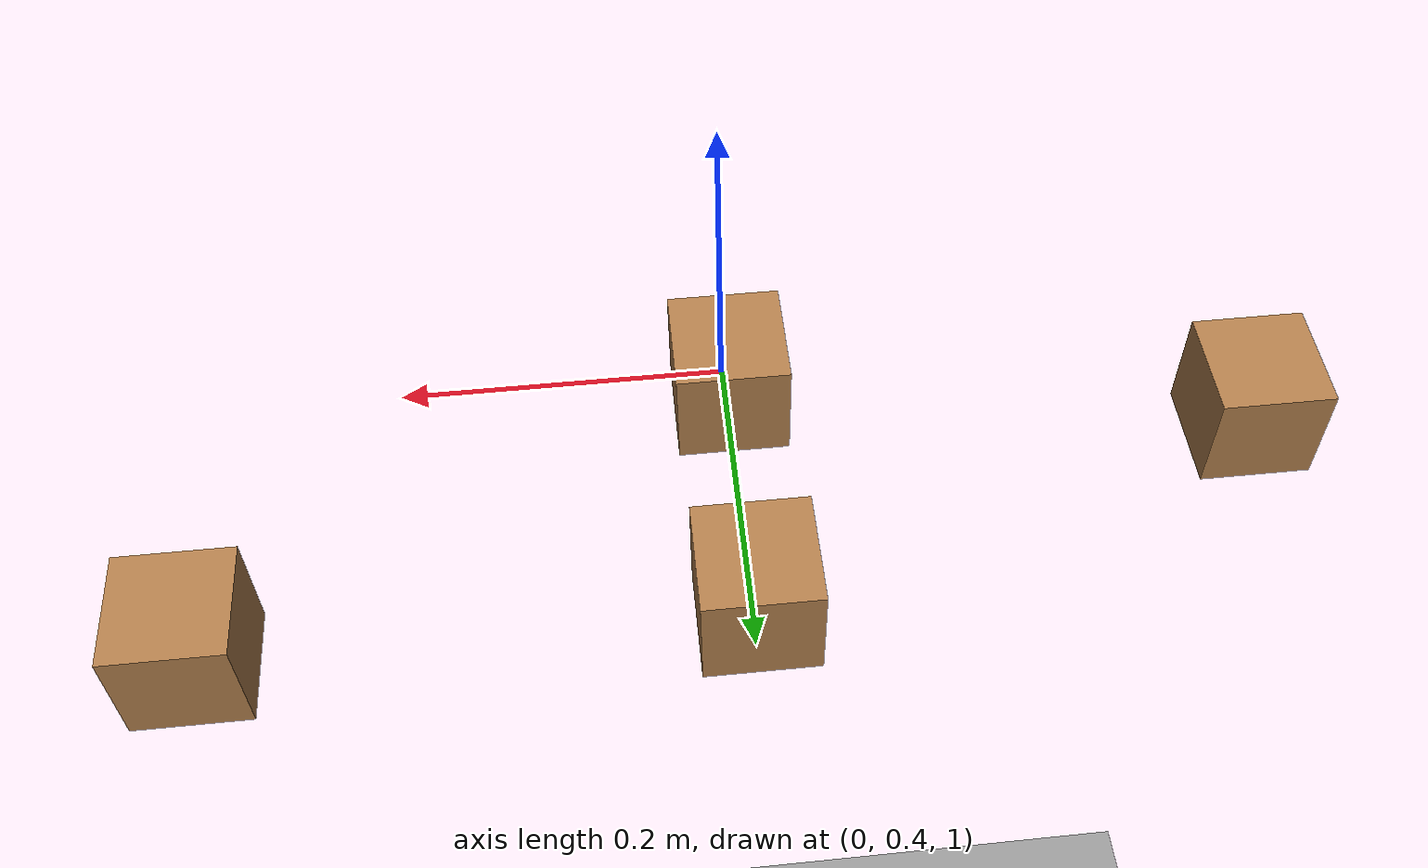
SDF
<sdf version="1.5">
 <world name="default">
  <scene><ambient>180 180 180 255</ambient><background>180 180 180 255</background><shadows>0</shadows></scene>
  <physics type="ode">
   <max_step_size>0.001</max_step_size>
   <real_time_factor>1.0</real_time_factor>
   <real_time_update_rate>1000</real_time_update_rate>
   <gravity>0 0 -9.8</gravity>
  </physics>
  <model name="ground_plane">
   <static>true</static>
   <link name="link">
    <collision name="collision">
     <geometry><plane><normal>0 0 1</normal><size>150 150</size></plane></geometry>
    </collision>
    <visual name="visual">
     <geometry><plane><normal>0 0 1</normal><size>5000 5000</size></plane></geometry>
     <material>
      <ambient>0.5 0.5 0.5 1</ambient>
      <diffuse>0.6 0.6 0.6 1</diffuse>
      <specular>0.3 0.3 0.3 1</specular>
      <emissive>0 0 0 1</emissive>
     </material>
    </visual>
   </link>
  </model>
  <model name="sun1">
   <static>true</static>
   <pose>0 0 10 0 -150 0</pose>
   <link name="link">
    <light name="sun_light" type="directional">
     <cast_shadows>false</cast_shadows>
     <pose>0 0 10 0 0 0</pose>
     <diffuse>204 204 204 255</diffuse>
     <specular>51 51 51 255</specular>
     <direction>0.5 0.1 -0.9</direction>
     <attenuation>
      <range>1000</range>
      <constant>0.9</constant>
      <linear>0.01</linear>
      <quadratic>0.000</quadratic>
     </attenuation>
    </light>
   </link>
  </model>
  <model name="sun2">
   <static>true</static>
   <pose>0 0 10 0 150 0</pose>
   <link name="link">
    <light name="sun_light" type="directional">
     <cast_shadows>false</cast_shadows>
     <pose>0 0 10 0 0 0</pose>
     <diffuse>204 204 204 255</diffuse>
     <specular>51 51 51 255</specular>
     <direction>0.5 0.1 -0.9</direction>
     <attenuation>
      <range>1000</range>
      <constant>0.9</constant>
      <linear>0.01</linear>
      <quadratic>0.000</quadratic>
     </attenuation>
    </light>
   </link>
  </model>
  <model name="wood_cube1">
   <link name="link">
    <pose>0 0 0.0375 0 -0 0</pose>
    <inertial>
     <mass>0.200</mass>
     <inertia>
      <ixx>0.00014083</ixx>
      <ixy>0</ixy>
      <ixz>0</ixz>
      <iyy>0.00014083</iyy>
      <iyz>0</iyz>
      <izz>0.00014083</izz>
     </inertia>
    </inertial>
    <collision name="collision">
     <geometry><box><size>0.065 0.065 0.065</size></box></geometry>
     <surface>
      <contact>
       <poissons_ratio>0.347</poissons_ratio>
       <elastic_modulus>8.8e+09</elastic_modulus>
       <ode><kp>100000</kp><kd>100</kd><max_vel>100</max_vel><min_depth>0.001</min_depth></ode>
      </contact>
      <friction>
       <torsional>
        <coefficient>1</coefficient>
        <use_patch_radius>0</use_patch_radius>
        <surface_radius>0.01</surface_radius>
       </torsional>
      </friction>
     </surface>
    </collision>
    <visual name="visual">
     <geometry><box><size>0.065 0.065 0.065</size></box></geometry>
     <material>
      <script><uri>file://media/materials/scripts/gazebo.material</uri><name>Gazebo/Wood</name></script>
     </material>
    </visual>
   </link>
   <pose>0.3 0.6 1.02 0 -0 0</pose>
  </model>
  <model name="wood_cube2">
   <link name="link">
    <pose>0 0 0.0375 0 -0 0</pose>
    <inertial>
     <mass>0.20</mass>
     <inertia>
      <ixx>0.00014083</ixx>
      <ixy>0</ixy>
      <ixz>0</ixz>
      <iyy>0.00014083</iyy>
      <iyz>0</iyz>
      <izz>0.00014083</izz>
     </inertia>
    </inertial>
    <collision name="collision">
     <geometry><box><size>0.065 0.065 0.065</size></box></geometry>
     <surface>
      <contact>
       <poissons_ratio>0.347</poissons_ratio>
       <elastic_modulus>8.8e+09</elastic_modulus>
       <ode><kp>100000</kp><kd>100</kd><max_vel>100</max_vel><min_depth>0.001</min_depth></ode>
      </contact>
      <friction>
       <torsional>
        <coefficient>1</coefficient>
        <use_patch_radius>0</use_patch_radius>
        <surface_radius>0.01</surface_radius>
       </torsional>
      </friction>
     </surface>
    </collision>
    <visual name="visual">
     <geometry><box><size>0.065 0.065 0.065</size></box></geometry>
     <material>
      <script><uri>file://media/materials/scripts/gazebo.material</uri><name>Gazebo/Wood</name></script>
     </material>
    </visual>
   </link>
   <pose>-0.3 0.5 1.02 0 -0 0</pose>
  </model>
  <model name="wood_cube3">
   <link name="link">
    <pose>0 0 0.0375 0 -0 0</pose>
    <inertial>
     <mass>0.200</mass>
     <inertia>
      <ixx>0.00014083</ixx>
      <ixy>0</ixy>
      <ixz>0</ixz>
      <iyy>0.00014083</iyy>
      <iyz>0</iyz>
      <izz>0.00014083</izz>
     </inertia>
    </inertial>
    <collision name="collision">
     <geometry><box><size>0.065 0.065 0.065</size></box></geometry>
     <surface>
      <contact>
       <poissons_ratio>0.347</poissons_ratio>
       <elastic_modulus>8.8e+09</elastic_modulus>
       <ode><kp>100000</kp><kd>100</kd><max_vel>100</max_vel><min_depth>0.001</min_depth></ode>
      </contact>
      <friction>
       <torsional>
        <coefficient>1</coefficient>
        <use_patch_radius>0</use_patch_radius>
        <surface_radius>0.01</surface_radius>
       </torsional>
      </friction>
     </surface>
    </collision>
    <visual name="visual">
     <geometry><box><size>0.065 0.065 0.065</size></box></geometry>
     <material>
      <script><uri>file://media/materials/scripts/gazebo.material</uri><name>Gazebo/Wood</name></script>
     </material>
    </visual>
   </link>
   <pose>0. 0.45 1.02 0 -0 0</pose>
  </model>
  <model name="wood_cube4">
   <link name="link">
    <pose>0 0 0.0375 0 -0 0</pose>
    <inertial>
     <mass>0.200</mass>
     <inertia>
      <ixx>0.00014083</ixx>
      <ixy>0</ixy>
      <ixz>0</ixz>
      <iyy>0.00014083</iyy>
      <iyz>0</iyz>
      <izz>0.00014083</izz>
     </inertia>
    </inertial>
    <collision name="collision">
     <geometry><box><size>0.065 0.065 0.065</size></box></geometry>
     <surface>
      <contact>
       <poissons_ratio>0.347</poissons_ratio>
       <elastic_modulus>8.8e+09</elastic_modulus>
       <ode><kp>100000</kp><kd>100</kd><max_vel>100</max_vel><min_depth>0.001</min_depth></ode>
      </contact>
      <friction>
       <torsional>
        <coefficient>1</coefficient>
        <use_patch_radius>0</use_patch_radius>
        <surface_radius>0.01</surface_radius>
       </torsional>
      </friction>
     </surface>
    </collision>
    <visual name="visual">
     <geometry><box><size>0.065 0.065 0.065</size></box></geometry>
     <material>
      <script><uri>file://media/materials/scripts/gazebo.material</uri><name>Gazebo/Wood</name></script>
     </material>
    </visual>
   </link>
   <pose>0.0 0.6 1.02 0 -0 0</pose>
  </model>
 </world>
</sdf>
